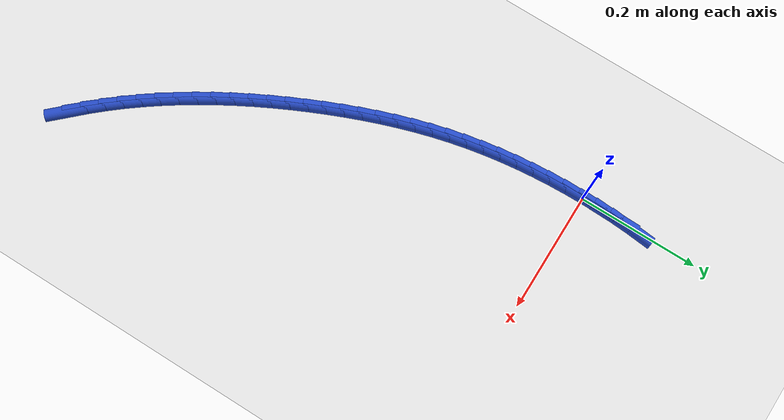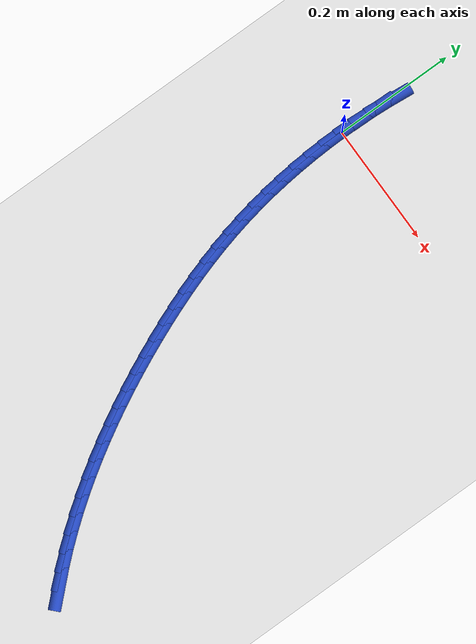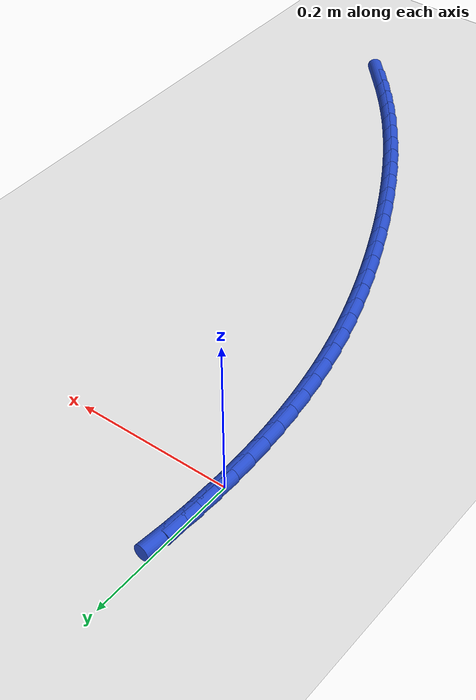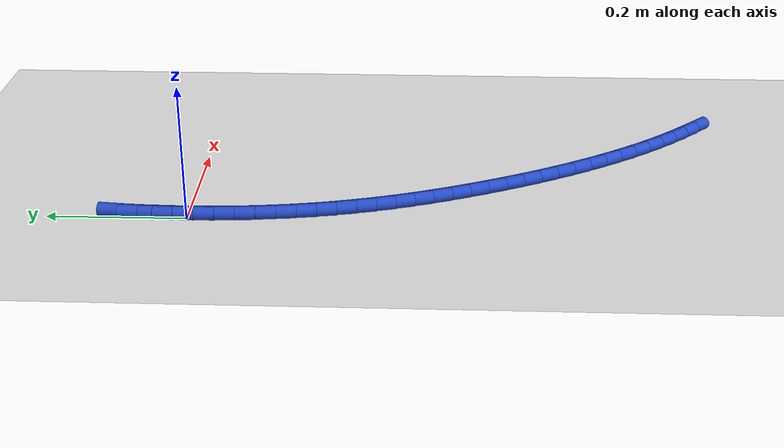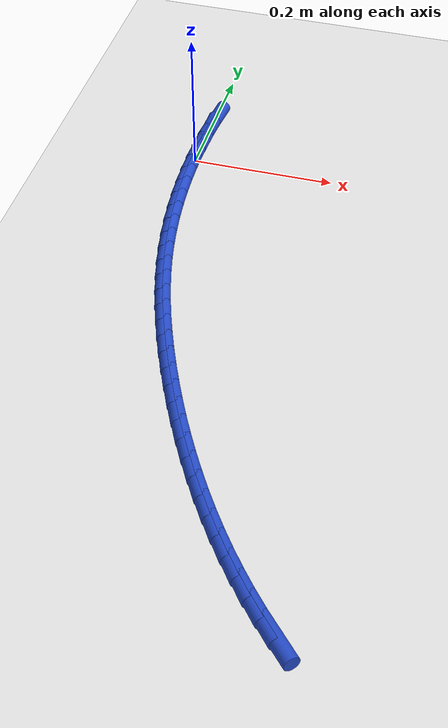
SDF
<sdf version="1.6">
 <world name="default">
  <model name="ground_plane">
   <static>1</static>
   <link name="link">
    <collision name="collision">
     <geometry><plane><normal>0 0 1</normal><size>100 100</size></plane></geometry>
     <surface><friction><ode><mu>100</mu><mu2>50</mu2></ode></friction></surface>
    </collision>
    <visual name="visual">
     <cast_shadows>0</cast_shadows>
     <geometry><plane><normal>0 0 1</normal><size>100 100</size></plane></geometry>
     <material>
      <script><uri>file://media/materials/scripts/gazebo.material</uri><name>Gazebo/WhiteGlow</name></script>
     </material>
    </visual>
   </link>
  </model>
  <model name="line">
   <link name="link_0">
    <pose>-6.071532165918825e-18 4.85722573273506e-17 0.01 0 1.57 1.5618496967412394</pose>
    <collision name="collision">
     <geometry><cylinder><radius>0.01</radius><length>0.08</length></cylinder></geometry>
    </collision>
    <visual name="visual">
     <material>
      <script><name>Gazebo/Blue</name><uri>file://media/materials/scripts/gazebo.material</uri></script>
     </material>
     <geometry><cylinder><radius>0.01</radius><length>0.08</length></cylinder></geometry>
    </visual>
   </link>
   <link name="link_1">
    <pose>0.00025737987307691417 0.02876759231284254 0.01 0 1.57 1.534700839534205</pose>
    <collision name="collision">
     <geometry><cylinder><radius>0.01</radius><length>0.08</length></cylinder></geometry>
    </collision>
    <visual name="visual">
     <material>
      <script><name>Gazebo/Blue</name><uri>file://media/materials/scripts/gazebo.material</uri></script>
     </material>
     <geometry><cylinder><radius>0.01</radius><length>0.08</length></cylinder></geometry>
    </visual>
   </link>
   <link name="link_2">
    <pose>0.001295701952245609 0.05752107871654088 0.01 0 1.57 1.5060226653108795</pose>
    <collision name="collision">
     <geometry><cylinder><radius>0.01</radius><length>0.08</length></cylinder></geometry>
    </collision>
    <visual name="visual">
     <material>
      <script><name>Gazebo/Blue</name><uri>file://media/materials/scripts/gazebo.material</uri></script>
     </material>
     <geometry><cylinder><radius>0.01</radius><length>0.08</length></cylinder></geometry>
    </visual>
   </link>
   <link name="link_3">
    <pose>0.003155664080682243 0.08619569926587722 0.01 0 1.57 1.4756687823261825</pose>
    <collision name="collision">
     <geometry><cylinder><radius>0.01</radius><length>0.08</length></cylinder></geometry>
    </collision>
    <visual name="visual">
     <material>
      <script><name>Gazebo/Blue</name><uri>file://media/materials/scripts/gazebo.material</uri></script>
     </material>
     <geometry><cylinder><radius>0.01</radius><length>0.08</length></cylinder></geometry>
    </visual>
   </link>
   <link name="link_261">
    <pose>0.3108936519643066 -0.7582226119286298 0.01 0 1.57 -0.8131852617652818</pose>
    <collision name="collision">
     <geometry><cylinder><radius>0.01</radius><length>0.08</length></cylinder></geometry>
    </collision>
    <visual name="visual">
     <material>
      <script><name>Gazebo/Blue</name><uri>file://media/materials/scripts/gazebo.material</uri></script>
     </material>
     <geometry><cylinder><radius>0.01</radius><length>0.08</length></cylinder></geometry>
    </visual>
   </link>
   <link name="link_262">
    <pose>0.29105773990131506 -0.7372525277112306 0.01 0 1.57 -0.8478080072927915</pose>
    <collision name="collision">
     <geometry><cylinder><radius>0.01</radius><length>0.08</length></cylinder></geometry>
    </collision>
    <visual name="visual">
     <material>
      <script><name>Gazebo/Blue</name><uri>file://media/materials/scripts/gazebo.material</uri></script>
     </material>
     <geometry><cylinder><radius>0.01</radius><length>0.08</length></cylinder></geometry>
    </visual>
   </link>
   <link name="link_263">
    <pose>0.27187368195586575 -0.7155109883076556 0.01 0 1.57 -0.8806839121223177</pose>
    <collision name="collision">
     <geometry><cylinder><radius>0.01</radius><length>0.08</length></cylinder></geometry>
    </collision>
    <visual name="visual">
     <material>
      <script><name>Gazebo/Blue</name><uri>file://media/materials/scripts/gazebo.material</uri></script>
     </material>
     <geometry><cylinder><radius>0.01</radius><length>0.08</length></cylinder></geometry>
    </visual>
   </link>
   <link name="link_264">
    <pose>0.2533355250764674 -0.6930547884799885 0.01 0 1.57 -0.9118970146051674</pose>
    <collision name="collision">
     <geometry><cylinder><radius>0.01</radius><length>0.08</length></cylinder></geometry>
    </collision>
    <visual name="visual">
     <material>
      <script><name>Gazebo/Blue</name><uri>file://media/materials/scripts/gazebo.material</uri></script>
     </material>
     <geometry><cylinder><radius>0.01</radius><length>0.08</length></cylinder></geometry>
    </visual>
   </link>
   <link name="link_265">
    <pose>0.23543731621162906 -0.6699407229903136 0.01 0 1.57 -0.9415357020889277</pose>
    <collision name="collision">
     <geometry><cylinder><radius>0.01</radius><length>0.08</length></cylinder></geometry>
    </collision>
    <visual name="visual">
     <material>
      <script><name>Gazebo/Blue</name><uri>file://media/materials/scripts/gazebo.material</uri></script>
     </material>
     <geometry><cylinder><radius>0.01</radius><length>0.08</length></cylinder></geometry>
    </visual>
   </link>
   <link name="link_266">
    <pose>0.21817310230985854 -0.6462255866007142 0.01 0 1.57 -0.9696904346142632</pose>
    <collision name="collision">
     <geometry><cylinder><radius>0.01</radius><length>0.08</length></cylinder></geometry>
    </collision>
    <visual name="visual">
     <material>
      <script><name>Gazebo/Blue</name><uri>file://media/materials/scripts/gazebo.material</uri></script>
     </material>
     <geometry><cylinder><radius>0.01</radius><length>0.08</length></cylinder></geometry>
    </visual>
   </link>
   <link name="link_267">
    <pose>0.20153693031966494 -0.6219661740732746 0.01 0 1.57 -0.9964519888824414</pose>
    <collision name="collision">
     <geometry><cylinder><radius>0.01</radius><length>0.08</length></cylinder></geometry>
    </collision>
    <visual name="visual">
     <material>
      <script><name>Gazebo/Blue</name><uri>file://media/materials/scripts/gazebo.material</uri></script>
     </material>
     <geometry><cylinder><radius>0.01</radius><length>0.08</length></cylinder></geometry>
    </visual>
   </link>
   <link name="link_268">
    <pose>0.18552284718955694 -0.5972192801700789 0.01 0 1.57 -1.0219101513059707</pose>
    <collision name="collision">
     <geometry><cylinder><radius>0.01</radius><length>0.08</length></cylinder></geometry>
    </collision>
    <visual name="visual">
     <material>
      <script><name>Gazebo/Blue</name><uri>file://media/materials/scripts/gazebo.material</uri></script>
     </material>
     <geometry><cylinder><radius>0.01</radius><length>0.08</length></cylinder></geometry>
    </visual>
   </link>
   <link name="link_269">
    <pose>0.1701248998680433 -0.572041699653211 0.01 0 1.57 -1.0461527889416702</pose>
    <collision name="collision">
     <geometry><cylinder><radius>0.01</radius><length>0.08</length></cylinder></geometry>
    </collision>
    <visual name="visual">
     <material>
      <script><name>Gazebo/Blue</name><uri>file://media/materials/scripts/gazebo.material</uri></script>
     </material>
     <geometry><cylinder><radius>0.01</radius><length>0.08</length></cylinder></geometry>
    </visual>
   </link>
   <link name="link_270">
    <pose>0.15533713530363263 -0.5464902272847548 0.01 0 1.57 -1.0692652321693665</pose>
    <collision name="collision">
     <geometry><cylinder><radius>0.01</radius><length>0.08</length></cylinder></geometry>
    </collision>
    <visual name="visual">
     <material>
      <script><name>Gazebo/Blue</name><uri>file://media/materials/scripts/gazebo.material</uri></script>
     </material>
     <geometry><cylinder><radius>0.01</radius><length>0.08</length></cylinder></geometry>
    </visual>
   </link>
   <link name="link_271">
    <pose>0.14115360044483363 -0.5206216578267947 0.01 0 1.57 -1.0913299107948995</pose>
    <collision name="collision">
     <geometry><cylinder><radius>0.01</radius><length>0.08</length></cylinder></geometry>
    </collision>
    <visual name="visual">
     <material>
      <script><name>Gazebo/Blue</name><uri>file://media/materials/scripts/gazebo.material</uri></script>
     </material>
     <geometry><cylinder><radius>0.01</radius><length>0.08</length></cylinder></geometry>
    </visual>
   </link>
   <link name="link_272">
    <pose>0.127568342240155 -0.49449278604141433 0.01 0 1.57 -1.112426194236</pose>
    <collision name="collision">
     <geometry><cylinder><radius>0.01</radius><length>0.08</length></cylinder></geometry>
    </collision>
    <visual name="visual">
     <material>
      <script><name>Gazebo/Blue</name><uri>file://media/materials/scripts/gazebo.material</uri></script>
     </material>
     <geometry><cylinder><radius>0.01</radius><length>0.08</length></cylinder></geometry>
    </visual>
   </link>
   <link name="link_273">
    <pose>0.11457540763810549 -0.46816040669069786 0.01 0 1.57 -1.1326303956000943</pose>
    <collision name="collision">
     <geometry><cylinder><radius>0.01</radius><length>0.08</length></cylinder></geometry>
    </collision>
    <visual name="visual">
     <material>
      <script><name>Gazebo/Blue</name><uri>file://media/materials/scripts/gazebo.material</uri></script>
     </material>
     <geometry><cylinder><radius>0.01</radius><length>0.08</length></cylinder></geometry>
    </visual>
   </link>
   <link name="link_274">
    <pose>0.10216884358719364 -0.4416813145367291 0.01 0 1.57 -1.1520183411300906</pose>
    <collision name="collision">
     <geometry><cylinder><radius>0.01</radius><length>0.08</length></cylinder></geometry>
    </collision>
    <visual name="visual">
     <material>
      <script><name>Gazebo/Blue</name><uri>file://media/materials/scripts/gazebo.material</uri></script>
     </material>
     <geometry><cylinder><radius>0.01</radius><length>0.08</length></cylinder></geometry>
    </visual>
   </link>
   <link name="link_275">
    <pose>0.09034273901607437 -0.4151122246616956 0.01 0 1.57 -1.171334053789561</pose>
    <collision name="collision">
     <geometry><cylinder><radius>0.01</radius><length>0.08</length></cylinder></geometry>
    </collision>
    <visual name="visual">
     <material>
      <script><name>Gazebo/Blue</name><uri>file://media/materials/scripts/gazebo.material</uri></script>
     </material>
     <geometry><cylinder><radius>0.01</radius><length>0.08</length></cylinder></geometry>
    </visual>
   </link>
   <link name="link_276">
    <pose>0.07910290315856111 -0.3884876065676686 0.01 0 1.57 -1.19220392494454</pose>
    <collision name="collision">
     <geometry><cylinder><radius>0.01</radius><length>0.08</length></cylinder></geometry>
    </collision>
    <visual name="visual">
     <material>
      <script><name>Gazebo/Blue</name><uri>file://media/materials/scripts/gazebo.material</uri></script>
     </material>
     <geometry><cylinder><radius>0.01</radius><length>0.08</length></cylinder></geometry>
    </visual>
   </link>
   <link name="link_277">
    <pose>0.06848283807858181 -0.3617893677233424 0.01 0 1.57 -1.214851530111605</pose>
    <collision name="collision">
     <geometry><cylinder><radius>0.01</radius><length>0.08</length></cylinder></geometry>
    </collision>
    <visual name="visual">
     <material>
      <script><name>Gazebo/Blue</name><uri>file://media/materials/scripts/gazebo.material</uri></script>
     </material>
     <geometry><cylinder><radius>0.01</radius><length>0.08</length></cylinder></geometry>
    </visual>
   </link>
   <link name="link_278">
    <pose>0.05852004433719141 -0.33499182629943824 0.01 0 1.57 -1.2392550725942404</pose>
    <collision name="collision">
     <geometry><cylinder><radius>0.01</radius><length>0.08</length></cylinder></geometry>
    </collision>
    <visual name="visual">
     <material>
      <script><name>Gazebo/Blue</name><uri>file://media/materials/scripts/gazebo.material</uri></script>
     </material>
     <geometry><cylinder><radius>0.01</radius><length>0.08</length></cylinder></geometry>
    </visual>
   </link>
   <link name="link_279">
    <pose>0.04925202249544479 -0.3080693004666771 0.01 0 1.57 -1.2653769882800492</pose>
    <collision name="collision">
     <geometry><cylinder><radius>0.01</radius><length>0.08</length></cylinder></geometry>
    </collision>
    <visual name="visual">
     <material>
      <script><name>Gazebo/Blue</name><uri>file://media/materials/scripts/gazebo.material</uri></script>
     </material>
     <geometry><cylinder><radius>0.01</radius><length>0.08</length></cylinder></geometry>
    </visual>
   </link>
   <link name="link_280">
    <pose>0.040716273114397156 -0.28099610839578126 0.01 0 1.57 -1.2931620089951412</pose>
    <collision name="collision">
     <geometry><cylinder><radius>0.01</radius><length>0.08</length></cylinder></geometry>
    </collision>
    <visual name="visual">
     <material>
      <script><name>Gazebo/Blue</name><uri>file://media/materials/scripts/gazebo.material</uri></script>
     </material>
     <geometry><cylinder><radius>0.01</radius><length>0.08</length></cylinder></geometry>
    </visual>
   </link>
   <link name="link_281">
    <pose>0.032950296755102866 -0.25374656825747005 0.01 0 1.57 -1.3225355178978475</pose>
    <collision name="collision">
     <geometry><cylinder><radius>0.01</radius><length>0.08</length></cylinder></geometry>
    </collision>
    <visual name="visual">
     <material>
      <script><name>Gazebo/Blue</name><uri>file://media/materials/scripts/gazebo.material</uri></script>
     </material>
     <geometry><cylinder><radius>0.01</radius><length>0.08</length></cylinder></geometry>
    </visual>
   </link>
   <link name="link_282">
    <pose>0.02599159397861715 -0.22629499822246565 0.01 0 1.57 -1.3533264569434327</pose>
    <collision name="collision">
     <geometry><cylinder><radius>0.01</radius><length>0.08</length></cylinder></geometry>
    </collision>
    <visual name="visual">
     <material>
      <script><name>Gazebo/Blue</name><uri>file://media/materials/scripts/gazebo.material</uri></script>
     </material>
     <geometry><cylinder><radius>0.01</radius><length>0.08</length></cylinder></geometry>
    </visual>
   </link>
   <link name="link_283">
    <pose>0.01987584260413521 -0.198617439977339 0.01 0 1.57 -1.384266030683736</pose>
    <collision name="collision">
     <geometry><cylinder><radius>0.01</radius><length>0.08</length></cylinder></geometry>
    </collision>
    <visual name="visual">
     <material>
      <script><name>Gazebo/Blue</name><uri>file://media/materials/scripts/gazebo.material</uri></script>
     </material>
     <geometry><cylinder><radius>0.01</radius><length>0.08</length></cylinder></geometry>
    </visual>
   </link>
   <link name="link_284">
    <pose>0.014610315844576598 -0.17071679353139077 0.01 0 1.57 -1.414412876956071</pose>
    <collision name="collision">
     <geometry><cylinder><radius>0.01</radius><length>0.08</length></cylinder></geometry>
    </collision>
    <visual name="visual">
     <material>
      <script><name>Gazebo/Blue</name><uri>file://media/materials/scripts/gazebo.material</uri></script>
     </material>
     <geometry><cylinder><radius>0.01</radius><length>0.08</length></cylinder></geometry>
    </visual>
   </link>
   <link name="link_285">
    <pose>0.010179827717705947 -0.14261719546047963 0.01 0 1.57 -1.443760095223061</pose>
    <collision name="collision">
     <geometry><cylinder><radius>0.01</radius><length>0.08</length></cylinder></geometry>
    </collision>
    <visual name="visual">
     <material>
      <script><name>Gazebo/Blue</name><uri>file://media/materials/scripts/gazebo.material</uri></script>
     </material>
     <geometry><cylinder><radius>0.01</radius><length>0.08</length></cylinder></geometry>
    </visual>
   </link>
   <link name="link_286">
    <pose>0.00656857917856119 -0.11434336202942033 0.01 0 1.57 -1.4723305407764409</pose>
    <collision name="collision">
     <geometry><cylinder><radius>0.01</radius><length>0.08</length></cylinder></geometry>
    </collision>
    <visual name="visual">
     <material>
      <script><name>Gazebo/Blue</name><uri>file://media/materials/scripts/gazebo.material</uri></script>
     </material>
     <geometry><cylinder><radius>0.01</radius><length>0.08</length></cylinder></geometry>
    </visual>
   </link>
   <link name="link_287">
    <pose>0.0037607711821802743 -0.08592000950302786 0.01 0 1.57 -1.5001506197456247</pose>
    <collision name="collision">
     <geometry><cylinder><radius>0.01</radius><length>0.08</length></cylinder></geometry>
    </collision>
    <visual name="visual">
     <material>
      <script><name>Gazebo/Blue</name><uri>file://media/materials/scripts/gazebo.material</uri></script>
     </material>
     <geometry><cylinder><radius>0.01</radius><length>0.08</length></cylinder></geometry>
    </visual>
   </link>
   <link name="link_288">
    <pose>0.001740604683601142 -0.05737185414611712 0.01 0 1.57 -1.5272496798713118</pose>
    <collision name="collision">
     <geometry><cylinder><radius>0.01</radius><length>0.08</length></cylinder></geometry>
    </collision>
    <visual name="visual">
     <material>
      <script><name>Gazebo/Blue</name><uri>file://media/materials/scripts/gazebo.material</uri></script>
     </material>
     <geometry><cylinder><radius>0.01</radius><length>0.08</length></cylinder></geometry>
    </visual>
   </link>
   <link name="link_289">
    <pose>0.0004922806378617358 -0.028723612223502913 0.01 0 1.57 -1.5536594693750287</pose>
    <collision name="collision">
     <geometry><cylinder><radius>0.01</radius><length>0.08</length></cylinder></geometry>
    </collision>
    <visual name="visual">
     <material>
      <script><name>Gazebo/Blue</name><uri>file://media/materials/scripts/gazebo.material</uri></script>
     </material>
     <geometry><cylinder><radius>0.01</radius><length>0.08</length></cylinder></geometry>
    </visual>
   </link>
   <link name="link_290">
    <pose>1.734723475976807e-18 -1.942890293094024e-16 0.01 0 1.57 1.5621789884766841</pose>
    <collision name="collision">
     <geometry><cylinder><radius>0.01</radius><length>0.08</length></cylinder></geometry>
    </collision>
    <visual name="visual">
     <material>
      <script><name>Gazebo/Blue</name><uri>file://media/materials/scripts/gazebo.material</uri></script>
     </material>
     <geometry><cylinder><radius>0.01</radius><length>0.08</length></cylinder></geometry>
    </visual>
   </link>
   <link name="link_291">
    <pose>0.0002479637250538602 0.02877426625957522 0.01 0 1.57 1.5370451847065996</pose>
    <collision name="collision">
     <geometry><cylinder><radius>0.01</radius><length>0.08</length></cylinder></geometry>
    </collision>
    <visual name="visual">
     <material>
      <script><name>Gazebo/Blue</name><uri>file://media/materials/scripts/gazebo.material</uri></script>
     </material>
     <geometry><cylinder><radius>0.01</radius><length>0.08</length></cylinder></geometry>
    </visual>
   </link>
   <link name="link_292">
    <pose>0.0012203727680613176 0.05757447029041125 0.01 0 1.57 1.549603078385394</pose>
    <collision name="collision">
     <geometry><cylinder><radius>0.01</radius><length>0.08</length></cylinder></geometry>
    </collision>
    <visual name="visual">
     <material>
      <script><name>Gazebo/Blue</name><uri>file://media/materials/scripts/gazebo.material</uri></script>
     </material>
     <geometry><cylinder><radius>0.01</radius><length>0.08</length></cylinder></geometry>
    </visual>
   </link>
  </model>
 </world>
</sdf>
